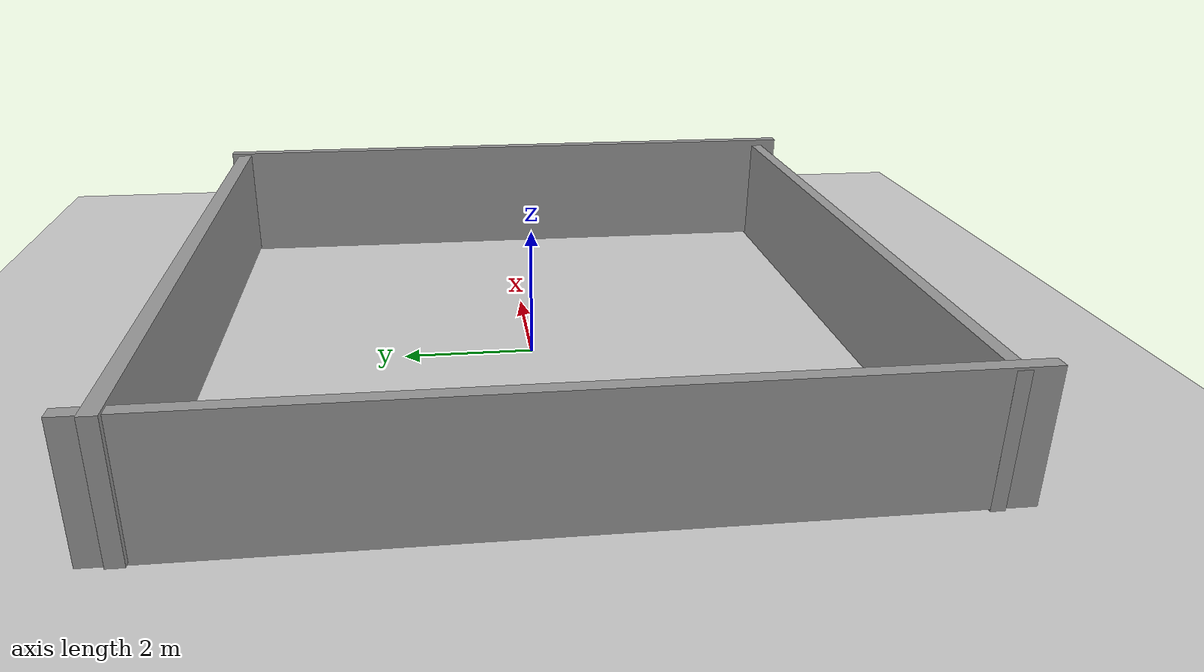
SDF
<sdf version="1.6">
 <world name="default">
  <light name="sun" type="directional">
   <pose>0 0 10 0 -0 0</pose>
   <diffuse>0.8 0.8 0.8 1</diffuse>
   <specular>0.2 0.2 0.2 1</specular>
   <attenuation>
    <range>1000</range>
    <constant>0.9</constant>
    <linear>0.01</linear>
    <quadratic>0.001</quadratic>
   </attenuation>
   <direction>-0.5 0.1 -0.9</direction>
  </light>
  <model name="ground_plane">
   <static>1</static>
   <link name="link">
    <collision name="collision">
     <geometry><plane><normal>0 0 1</normal><size>100 100</size></plane></geometry>
     <surface>
      <contact><collide_bitmask>65535</collide_bitmask></contact>
      <friction><ode><mu>100</mu><mu2>50</mu2></ode></friction>
     </surface>
    </collision>
    <visual name="visual">
     <cast_shadows>0</cast_shadows>
     <geometry><plane><normal>0 0 1</normal><size>100 100</size></plane></geometry>
     <material>
      <script><uri>file://media/materials/scripts/gazebo.material</uri><name>Gazebo/Grey</name></script>
     </material>
    </visual>
   </link>
  </model>
  <gravity>0 0 -9.8</gravity>
  <magnetic_field>6e-06 2.3e-05 -4.2e-05</magnetic_field>
  <atmosphere type="adiabatic"/>
  <physics name="default_physics" default="0" type="ode">
   <max_step_size>0.001</max_step_size>
   <real_time_factor>1</real_time_factor>
   <real_time_update_rate>1000</real_time_update_rate>
  </physics>
  <scene><ambient>0.4 0.4 0.4 1</ambient><background>0.7 0.7 0.7 1</background><shadows>1</shadows></scene>
  <audio><device>default</device></audio>
  <spherical_coordinates>
   <surface_model>EARTH_WGS84</surface_model>
   <latitude_deg>0</latitude_deg>
   <longitude_deg>0</longitude_deg>
   <elevation>0</elevation>
   <heading_deg>0</heading_deg>
  </spherical_coordinates>
  <model name="unit_box">
   <pose>5.02675 -0.077314 1.09447 4e-06 -0.00097 -0.000116</pose>
   <static>1</static>
   <link name="unit_box::link">
    <inertial>
     <mass>1</mass>
     <inertia>
      <ixx>0.166667</ixx>
      <ixy>0</ixy>
      <ixz>0</ixz>
      <iyy>0.166667</iyy>
      <iyz>0</iyz>
      <izz>0.166667</izz>
     </inertia>
    </inertial>
    <collision name="collision"><geometry><box><size>0.168543 10.6718 1.93568</size></box></geometry></collision>
    <visual name="visual">
     <geometry><box><size>0.168543 10.6718 1.93568</size></box></geometry>
     <material>
      <script><name>Gazebo/Grey</name><uri>file://media/materials/scripts/gazebo.material</uri></script>
     </material>
    </visual>
   </link>
  </model>
  <model name="unit_box_clone">
   <pose>-5.00133 -0.014805 1.05541 0 -0 0</pose>
   <static>1</static>
   <link name="unit_box_clone::unit_box::link">
    <inertial>
     <mass>1</mass>
     <inertia>
      <ixx>0.166667</ixx>
      <ixy>0</ixy>
      <ixz>0</ixz>
      <iyy>0.166667</iyy>
      <iyz>0</iyz>
      <izz>0.166667</izz>
     </inertia>
    </inertial>
    <collision name="collision"><geometry><box><size>0.194175 11.0188 1.86568</size></box></geometry></collision>
    <visual name="visual">
     <geometry><box><size>0.194175 11.0188 1.86568</size></box></geometry>
     <material>
      <script><name>Gazebo/Grey</name><uri>file://media/materials/scripts/gazebo.material</uri></script>
     </material>
    </visual>
   </link>
  </model>
  <model name="unit_box_clone_clone">
   <pose>-0.015921 5.02461 1.09065 0 -0 1.57</pose>
   <static>1</static>
   <link name="unit_box_clone_clone::unit_box_clone::unit_box::link">
    <inertial>
     <mass>1</mass>
     <inertia>
      <ixx>0.166667</ixx>
      <ixy>0</ixy>
      <ixz>0</ixz>
      <iyy>0.166667</iyy>
      <iyz>0</iyz>
      <izz>0.166667</izz>
     </inertia>
    </inertial>
    <collision name="collision"><geometry><box><size>0.228026 10.3457 1.86568</size></box></geometry></collision>
    <visual name="visual">
     <geometry><box><size>0.228026 10.3457 1.86568</size></box></geometry>
     <material>
      <script><name>Gazebo/Grey</name><uri>file://media/materials/scripts/gazebo.material</uri></script>
     </material>
    </visual>
   </link>
  </model>
  <model name="unit_box_clone_clone_clone">
   <pose>0.000238 -5.03982 1.02073 0 -0 1.57</pose>
   <static>1</static>
   <link name="unit_box_clone_clone_clone::unit_box_clone_clone::unit_box_clone::unit_box::link">
    <inertial>
     <mass>1</mass>
     <inertia>
      <ixx>0.166667</ixx>
      <ixy>0</ixy>
      <ixz>0</ixz>
      <iyy>0.166667</iyy>
      <iyz>0</iyz>
      <izz>0.166667</izz>
     </inertia>
    </inertial>
    <collision name="collision"><geometry><box><size>0.194175 10.1992 1.86568</size></box></geometry></collision>
    <visual name="visual">
     <geometry><box><size>0.194175 10.1992 1.86568</size></box></geometry>
     <material>
      <script><name>Gazebo/Grey</name><uri>file://media/materials/scripts/gazebo.material</uri></script>
     </material>
    </visual>
   </link>
  </model>
 </world>
</sdf>
